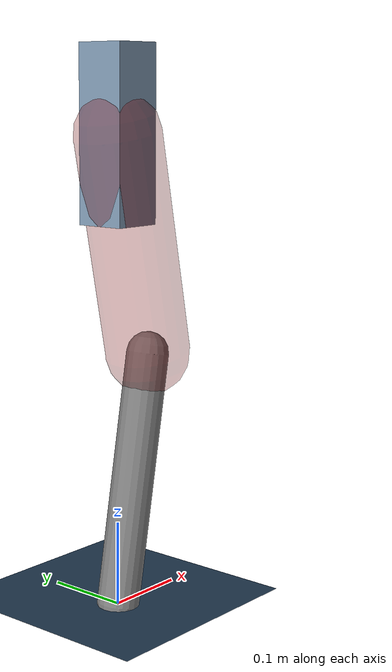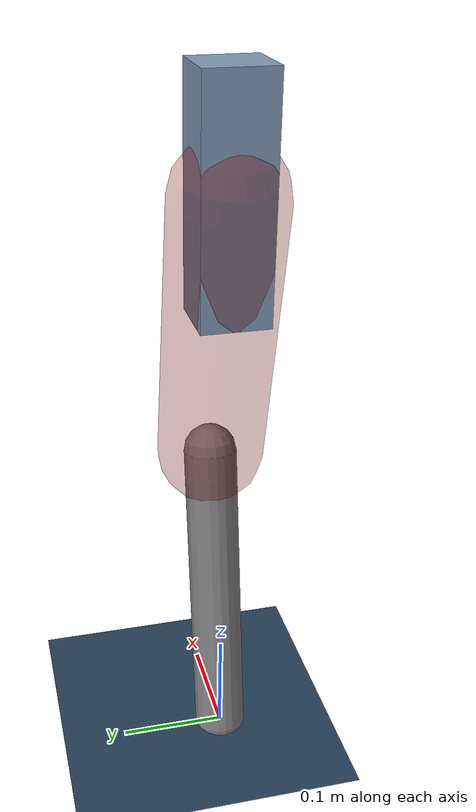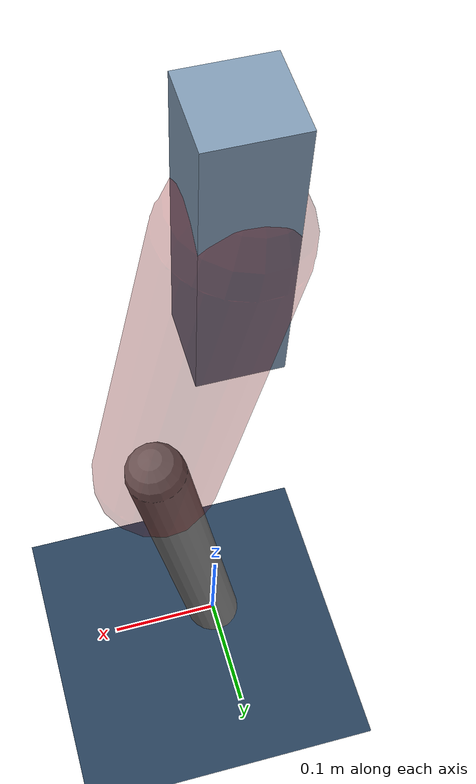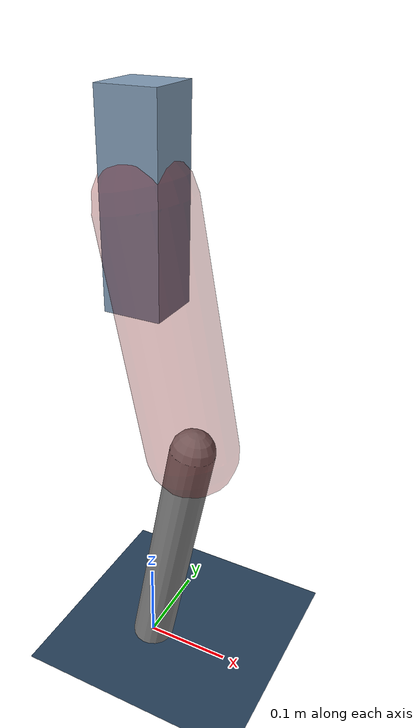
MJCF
<mujoco model="Hopper2D">
	<compiler inertiafromgeom="true" angle="radian" />
	<option timestep="0.001" integrator="implicit" cone="elliptic" solver="Newton" tolerance="1e-10" />

	<default>
		<geom contype="1" conaffinity="1" condim="3" friction="2 0.005 0.0001" solref="0.005 1" />
		<joint limited="true" damping="0.1" />
	</default>

	<asset>
		<texture name="skybox" type="skybox" builtin="gradient" rgb1=".4 .6 .8" rgb2="0 0 0" width="800" height="800" />
		<texture name="grid" type="2d" builtin="checker" rgb1=".1 .2 .3" rgb2=".2 .3 .4" width="300" height="300" mark="edge" markrgb=".2 .3 .4" />
		<material name="ground" texture="grid" texrepeat="1 1" texuniform="true" reflectance="0.1" />
		<material name="leg" rgba="0.5 0.6 0.7 1" />
	</asset>

	<worldbody>

		<geom name="floor" type="plane" size="5 5 0.25" material="ground" />

		<light directional="false" diffuse="0.8 0.8 0.8" specular="0.3 0.3 0.3" pos="0 0 2" dir="0 0 -1" />
		<light mode="targetbodycom" target="base" directional="false" diffuse="0.8 0.8 0.8" specular="0.3 0.3 0.3" pos="0 0 2" dir="0 0 -1" />

		<camera name="fixed" pos="0 -2 1" xyaxes="1 0 0 0 0 1" />
		<camera name="tracking" mode="trackcom" pos="0 -3 1" />

		<body name="root" pos="0 0 0.5504858207021078">
			<joint name="slide_x" type="slide" axis="1 0 0" range="-100 100" />
			<joint name="slide_z" type="slide" axis="0 0 1" range="0 10" />

			<body name="base" pos="0 0 0">
				<geom name="torso" type="box" size="0.03 0.03 0.1" mass="2.214" material="leg" />

				<body name="link1" pos="0 0 0" euler="0 1.3667468543307724 0">
					<joint type="hinge" axis="0 -1 0" pos="0 0 0" name="hinge1" limited="true" range="-3.14 3.14" stiffness="0" damping="0.1" />
					<geom name="thigh" type="capsule" fromto="0 0 0 0.2593261178872209 0 0" size="0.05" rgba="0.5 0 0 0.3" mass="0.8806479065067743" />

					<body name="link2" pos="0.2593261178872209 0 0" euler="0 0.379435806546518 0">
						<joint type="hinge" axis="0 -1 0" pos="0 0 0" name="hinge2" limited="true" range="-3.14 3.14" stiffness="0" damping="0.1" />
						<geom name="shank" type="capsule" fromto="0 0 0 0.30115970281488696 0 0" size="0.025" mass="0.4843437325333983" />

					</body>
				</body>
			</body>
		</body>
	</worldbody>

	<actuator>
		<motor name="torque1" joint="hinge1" ctrlrange="-89.29658308815777 89.29658308815777" ctrllimited="true" gear="1" />
		<motor name="torque2" joint="hinge2" ctrlrange="-87.50309656273572 87.50309656273572" ctrllimited="true" gear="1" />
	</actuator>
</mujoco>
